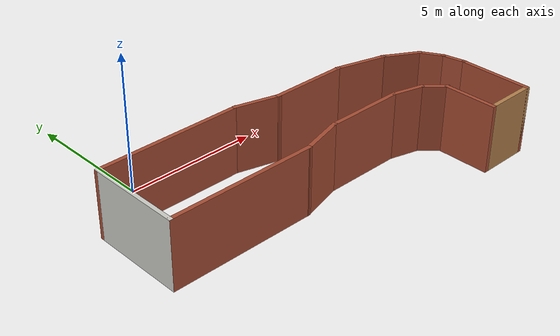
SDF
<?xml version='1.0'?>
<sdf version='1.5'>
  <model name='maze_2'>
    <pose frame=''>4.50476 -4.26739 0 0 -0 0</pose>
    <link name='Wall_15'>
      <collision name='Wall_15_Collision'>
        <geometry>
          <box>
            <size>5.5 0.15 2.5</size>
          </box>
        </geometry>
        <pose frame=''>0 0 1.25 0 -0 0</pose>
      </collision>
      <visual name='Wall_15_Visual'>
        <pose frame=''>0 0 1.25 0 -0 0</pose>
        <geometry>
          <box>
            <size>5.5 0.15 2.5</size>
          </box>
        </geometry>
        <material>
          <script>
            <uri>file://media/materials/scripts/gazebo.material</uri>
            <name>Gazebo/Bricks</name>
          </script>
          <ambient>1 1 1 1</ambient>
        </material>
      </visual>
      <pose frame=''>-3.96976 -0.522612 0 0 -0 0</pose>
    </link>
    <link name='Wall_19'>
      <collision name='Wall_19_Collision'>
        <geometry>
          <box>
            <size>1.75 0.15 2.5</size>
          </box>
        </geometry>
        <pose frame=''>0 0 1.25 0 -0 0</pose>
      </collision>
      <visual name='Wall_19_Visual'>
        <pose frame=''>0 0 1.25 0 -0 0</pose>
        <geometry>
          <box>
            <size>1.75 0.15 2.5</size>
          </box>
        </geometry>
        <material>
          <script>
            <uri>file://media/materials/scripts/gazebo.material</uri>
            <name>Gazebo/Bricks</name>
          </script>
          <ambient>1 1 1 1</ambient>
        </material>
      </visual>
      <pose frame=''>-0.522019 -0.315557 0 0 -0 0.261799</pose>
    </link>
    <link name='Wall_2'>
      <collision name='Wall_2_Collision'>
        <geometry>
          <box>
            <size>3.5 0.15 2.5</size>
          </box>
        </geometry>
        <pose frame=''>0 0 1.25 0 -0 0</pose>
      </collision>
      <visual name='Wall_2_Visual'>
        <pose frame=''>0 0 1.25 0 -0 0</pose>
        <geometry>
          <box>
            <size>3.5 0.15 2.5</size>
          </box>
        </geometry>
        <material>
          <script>
            <uri>file://media/materials/scripts/gazebo.material</uri>
            <name>Gazebo/CeilingTiled</name>
          </script>
          <ambient>1 1 1 1</ambient>
        </material>
      </visual>
      <pose frame=''>-6.64476 1.15239 0 0 0 -1.5708</pose>
    </link>
    <link name='Wall_21'>
      <collision name='Wall_21_Collision'>
        <geometry>
          <box>
            <size>1.75 0.15 2.5</size>
          </box>
        </geometry>
        <pose frame=''>0 0 1.25 0 -0 0</pose>
      </collision>
      <visual name='Wall_21_Visual'>
        <pose frame=''>0 0 1.25 0 -0 0</pose>
        <geometry>
          <box>
            <size>1.75 0.15 2.5</size>
          </box>
        </geometry>
        <material>
          <script>
            <uri>file://media/materials/scripts/gazebo.material</uri>
            <name>Gazebo/Bricks</name>
          </script>
          <ambient>1 1 1 1</ambient>
        </material>
      </visual>
      <pose frame=''>-0.522019 2.62033 0 0 0 -0.261799</pose>
    </link>
    <link name='Wall_26'>
      <collision name='Wall_26_Collision'>
        <geometry>
          <box>
            <size>3 0.15 2.5</size>
          </box>
        </geometry>
        <pose frame=''>0 0 1.25 0 -0 0</pose>
      </collision>
      <visual name='Wall_26_Visual'>
        <pose frame=''>0 0 1.25 0 -0 0</pose>
        <geometry>
          <box>
            <size>3 0.15 2.5</size>
          </box>
        </geometry>
        <material>
          <script>
            <uri>file://media/materials/scripts/gazebo.material</uri>
            <name>Gazebo/Bricks</name>
          </script>
          <ambient>1 1 1 1</ambient>
        </material>
      </visual>
      <pose frame=''>1.67572 2.41328 0 0 -0 0</pose>
    </link>
    <link name='Wall_28'>
      <collision name='Wall_28_Collision'>
        <geometry>
          <box>
            <size>3 0.15 2.5</size>
          </box>
        </geometry>
        <pose frame=''>0 0 1.25 0 -0 0</pose>
      </collision>
      <visual name='Wall_28_Visual'>
        <pose frame=''>0 0 1.25 0 -0 0</pose>
        <geometry>
          <box>
            <size>3 0.15 2.5</size>
          </box>
        </geometry>
        <material>
          <script>
            <uri>file://media/materials/scripts/gazebo.material</uri>
            <name>Gazebo/Bricks</name>
          </script>
          <ambient>1 1 1 1</ambient>
        </material>
      </visual>
      <pose frame=''>1.67572 -0.108502 0 0 -0 0</pose>
    </link>
    <link name='Wall_30'>
      <collision name='Wall_30_Collision'>
        <geometry>
          <box>
            <size>1.25 0.15 2.5</size>
          </box>
        </geometry>
        <pose frame=''>0 0 1.25 0 -0 0</pose>
      </collision>
      <visual name='Wall_30_Visual'>
        <pose frame=''>0 0 1.25 0 -0 0</pose>
        <geometry>
          <box>
            <size>1.25 0.15 2.5</size>
          </box>
        </geometry>
        <material>
          <script>
            <uri>file://media/materials/scripts/gazebo.material</uri>
            <name>Gazebo/Bricks</name>
          </script>
          <ambient>1 1 1 1</ambient>
        </material>
      </visual>
      <pose frame=''>3.63198 -0.250852 0 0 0 -0.261799</pose>
    </link>
    <link name='Wall_31'>
      <collision name='Wall_31_Collision'>
        <geometry>
          <box>
            <size>1.02508 0.15 2.5</size>
          </box>
        </geometry>
        <pose frame=''>0 0 1.25 0 -0 0</pose>
      </collision>
      <visual name='Wall_31_Visual'>
        <pose frame=''>0 0 1.25 0 -0 0</pose>
        <geometry>
          <box>
            <size>1.02508 0.15 2.5</size>
          </box>
        </geometry>
        <material>
          <script>
            <uri>file://media/materials/scripts/gazebo.material</uri>
            <name>Gazebo/Bricks</name>
          </script>
          <ambient>1 1 1 1</ambient>
        </material>
      </visual>
      <pose frame=''>4.48125 -0.693723 0 0 0 -0.757129</pose>
    </link>
    <link name='Wall_32'>
      <collision name='Wall_32_Collision'>
        <geometry>
          <box>
            <size>2 0.15 2.5</size>
          </box>
        </geometry>
        <pose frame=''>0 0 1.25 0 -0 0</pose>
      </collision>
      <visual name='Wall_32_Visual'>
        <pose frame=''>0 0 1.25 0 -0 0</pose>
        <geometry>
          <box>
            <size>2 0.15 2.5</size>
          </box>
        </geometry>
        <material>
          <script>
            <uri>file://media/materials/scripts/gazebo.material</uri>
            <name>Gazebo/Bricks</name>
          </script>
          <ambient>1 1 1 1</ambient>
        </material>
      </visual>
      <pose frame=''>4.78177 -1.91924 0 0 0 -1.5708</pose>
    </link>
    <link name='Wall_34'>
      <collision name='Wall_34_Collision'>
        <geometry>
          <box>
            <size>2 0.15 2.5</size>
          </box>
        </geometry>
        <pose frame=''>0 0 1.25 0 -0 0</pose>
      </collision>
      <visual name='Wall_34_Visual'>
        <pose frame=''>0 0 1.25 0 -0 0</pose>
        <geometry>
          <box>
            <size>2 0.15 2.5</size>
          </box>
        </geometry>
        <material>
          <script>
            <uri>file://media/materials/scripts/gazebo.material</uri>
            <name>Gazebo/Bricks</name>
          </script>
          <ambient>1 1 1 1</ambient>
        </material>
      </visual>
      <pose frame=''>3.9942 2.17387 0 0 0 -0.261799</pose>
    </link>
    <link name='Wall_35'>
      <collision name='Wall_35_Collision'>
        <geometry>
          <box>
            <size>1.5 0.15 2.5</size>
          </box>
        </geometry>
        <pose frame=''>0 0 1.25 0 -0 0</pose>
      </collision>
      <visual name='Wall_35_Visual'>
        <pose frame=''>0 0 1.25 0 -0 0</pose>
        <geometry>
          <box>
            <size>1.5 0.15 2.5</size>
          </box>
        </geometry>
        <material>
          <script>
            <uri>file://media/materials/scripts/gazebo.material</uri>
            <name>Gazebo/Bricks</name>
          </script>
          <ambient>1 1 1 1</ambient>
        </material>
      </visual>
      <pose frame=''>5.47225 1.59696 0 0 0 -0.523599</pose>
    </link>
    <link name='Wall_36'>
      <collision name='Wall_36_Collision'>
        <geometry>
          <box>
            <size>1 0.15 2.5</size>
          </box>
        </geometry>
        <pose frame=''>0 0 1.25 0 -0 0</pose>
      </collision>
      <visual name='Wall_36_Visual'>
        <pose frame=''>0 0 1.25 0 -0 0</pose>
        <geometry>
          <box>
            <size>1 0.15 2.5</size>
          </box>
        </geometry>
        <material>
          <script>
            <uri>file://media/materials/scripts/gazebo.material</uri>
            <name>Gazebo/Bricks</name>
          </script>
          <ambient>1 1 1 1</ambient>
        </material>
      </visual>
      <pose frame=''>6.26932 0.891401 0 0 0 -1.0472</pose>
    </link>
    <link name='Wall_39'>
      <collision name='Wall_39_Collision'>
        <geometry>
          <box>
            <size>2 0.15 2.5</size>
          </box>
        </geometry>
        <pose frame=''>0 0 1.25 0 -0 0</pose>
      </collision>
      <visual name='Wall_39_Visual'>
        <pose frame=''>0 0 1.25 0 -0 0</pose>
        <geometry>
          <box>
            <size>2 0.15 2.5</size>
          </box>
        </geometry>
        <material>
          <script>
            <uri>file://media/materials/scripts/gazebo.material</uri>
            <name>Gazebo/Wood</name>
          </script>
          <ambient>1 1 1 1</ambient>
        </material>
      </visual>
      <pose frame=''>5.70677 -2.84424 0 0 -0 0</pose>
    </link>
    <link name='Wall_4'>
      <collision name='Wall_4_Collision'>
        <geometry>
          <box>
            <size>5.5 0.15 2.5</size>
          </box>
        </geometry>
        <pose frame=''>0 0 1.25 0 -0 0</pose>
      </collision>
      <visual name='Wall_4_Visual'>
        <pose frame=''>0 0 1.25 0 -0 0</pose>
        <geometry>
          <box>
            <size>5.5 0.15 2.5</size>
          </box>
        </geometry>
        <material>
          <script>
            <uri>file://media/materials/scripts/gazebo.material</uri>
            <name>Gazebo/Bricks</name>
          </script>
          <ambient>1 1 1 1</ambient>
        </material>
      </visual>
      <pose frame=''>-3.96976 2.82739 0 0 -0 0</pose>
    </link>
    <link name='Wall_41'>
      <collision name='Wall_41_Collision'>
        <geometry>
          <box>
            <size>2.75 0.15 2.5</size>
          </box>
        </geometry>
        <pose frame=''>0 0 1.25 0 -0 0</pose>
      </collision>
      <visual name='Wall_41_Visual'>
        <pose frame=''>0 0 1.25 0 -0 0</pose>
        <geometry>
          <box>
            <size>2.75 0.15 2.5</size>
          </box>
        </geometry>
        <material>
          <script>
            <uri>file://media/materials/scripts/gazebo.material</uri>
            <name>Gazebo/Bricks</name>
          </script>
          <ambient>1 1 1 1</ambient>
        </material>
      </visual>
      <pose frame=''>6.63177 -1.54424 0 0 -0 1.5708</pose>
    </link>
    <link name='Wall_43'>
      <collision name='Wall_43_Collision'>
        <geometry>
          <box>
            <size>0.932094 0.15 2.5</size>
          </box>
        </geometry>
        <pose frame=''>0 0 1.25 0 -0 0</pose>
      </collision>
      <visual name='Wall_43_Visual'>
        <pose frame=''>0 0 1.25 0 -0 0</pose>
        <geometry>
          <box>
            <size>0.932094 0.15 2.5</size>
          </box>
        </geometry>
        <material>
          <script>
            <uri>file://media/materials/scripts/gazebo.material</uri>
            <name>Gazebo/Bricks</name>
          </script>
          <ambient>1 1 1 1</ambient>
        </material>
      </visual>
      <pose frame=''>6.5568 0.139549 0 0 0 -1.37787</pose>
    </link>
    <static>1</static>
  </model>
</sdf>
